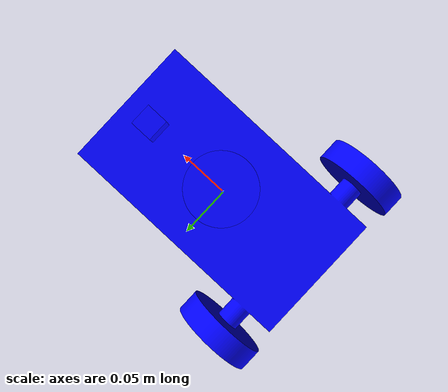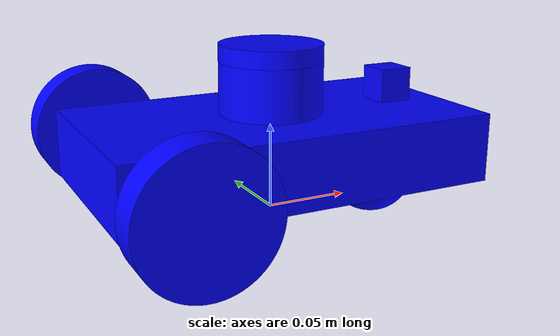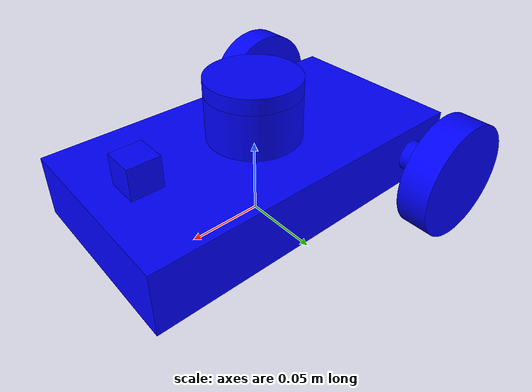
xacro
<?xml version="1.0" ?>
<robot name="G_13_WS2" xmlns:xacro="http://www.ros.org/wiki/xacro">

<xacro:include filename="$(find G_13_WS2_description)/urdf/materials.xacro" />
<xacro:include filename="$(find G_13_WS2_description)/urdf/G_13_WS2.ros2control" />
<xacro:include filename="$(find G_13_WS2_description)/urdf/G_13_WS2.gazebo" />
<link name="base_link">
  <inertial>
    <origin xyz="-0.0008716134146248871 1.5770818140795136e-17 0.04007398336506419" rpy="0 0 0"/>
    <mass value="9.054106572251074"/>
    <inertia ixx="0.012497" iyy="0.036125" izz="0.044795" ixy="0.0" iyz="0.0" ixz="-2e-05"/>
  </inertial>
  <visual>
    <origin xyz="0 0 0" rpy="0 0 0"/>
    <geometry>
      <mesh filename="file://$(find G_13_WS2_description)/meshes/base_link.stl" scale="0.001 0.001 0.001"/>
    </geometry>
    <material name="silver"/>
  </visual>
  <collision>
    <origin xyz="0 0 0" rpy="0 0 0"/>
    <geometry>
      <mesh filename="file://$(find G_13_WS2_description)/meshes/base_link.stl" scale="0.001 0.001 0.001"/>
    </geometry>
  </collision>
</link>

<link name="lidar_1">
  <inertial>
    <origin xyz="5.026061718855929e-18 0.0 0.0050000000000000044" rpy="0 0 0"/>
    <mass value="0.2219535209761188"/>
    <inertia ixx="5.2e-05" iyy="5.2e-05" izz="0.0001" ixy="0.0" iyz="-0.0" ixz="-0.0"/>
  </inertial>
  <visual>
    <origin xyz="-0.0 -0.0 -0.0875" rpy="0 0 0"/>
    <geometry>
      <mesh filename="file://$(find G_13_WS2_description)/meshes/lidar_1.stl" scale="0.001 0.001 0.001"/>
    </geometry>
    <material name="silver"/>
  </visual>
  <collision>
    <origin xyz="-0.0 -0.0 -0.0875" rpy="0 0 0"/>
    <geometry>
      <mesh filename="file://$(find G_13_WS2_description)/meshes/lidar_1.stl" scale="0.001 0.001 0.001"/>
    </geometry>
  </collision>
</link>

<link name="camara_1">
  <inertial>
    <origin xyz="-0.03 0.0 0.010000000000000002" rpy="0 0 0"/>
    <mass value="0.0628"/>
    <inertia ixx="4e-06" iyy="4e-06" izz="4e-06" ixy="0.0" iyz="0.0" ixz="0.0"/>
  </inertial>
  <visual>
    <origin xyz="-0.11 -0.0 -0.0575" rpy="0 0 0"/>
    <geometry>
      <mesh filename="file://$(find G_13_WS2_description)/meshes/camara_1.stl" scale="0.001 0.001 0.001"/>
    </geometry>
    <material name="silver"/>
  </visual>
  <collision>
    <origin xyz="-0.11 -0.0 -0.0575" rpy="0 0 0"/>
    <geometry>
      <mesh filename="file://$(find G_13_WS2_description)/meshes/camara_1.stl" scale="0.001 0.001 0.001"/>
    </geometry>
  </collision>
</link>

<link name="caster_1">
  <inertial>
    <origin xyz="-0.03999999999999998 -1.3711084015197835e-17 -0.006391402495744708" rpy="0 0 0"/>
    <mass value="0.1627226693245904"/>
    <inertia ixx="2.2e-05" iyy="2.2e-05" izz="3.8e-05" ixy="-0.0" iyz="0.0" ixz="0.0"/>
  </inertial>
  <visual>
    <origin xyz="-0.11 -0.0 -0.030" rpy="0 0 0"/>
    <geometry>
      <mesh filename="file://$(find G_13_WS2_description)/meshes/caster_1.stl" scale="0.001 0.001 0.001"/>
    </geometry>
    <material name="silver"/>
  </visual>
  <collision>
    <origin xyz="-0.11 -0.0 -0.0175" rpy="0 0 0"/>
    <geometry>
      <sphere radius="0.01"/>

    </geometry>
  </collision>
</link>

<link name="right_wheel_1">
  <inertial>
    <origin xyz="-5.551115123125783e-17 -0.010000000000000023 -1.3877787807814457e-17" rpy="0 0 0"/>
    <mass value="0.6936047530503713"/>
    <inertia ixx="0.000267" iyy="0.000488" izz="0.000267" ixy="-0.0" iyz="0.0" ixz="0.0"/>
  </inertial>
  <visual>
    <origin xyz="0.08 0.08 -0.0375" rpy="0 0 0"/>
    <geometry>
      <mesh filename="file://$(find G_13_WS2_description)/meshes/right_wheel_1.stl" scale="0.001 0.001 0.001"/>
    </geometry>
    <material name="silver"/>
  </visual>
  <collision>
    <origin xyz="0.08 0.08 -0.0375" rpy="0 0 0"/>
    <geometry>
      <mesh filename="file://$(find G_13_WS2_description)/meshes/right_wheel_1.stl" scale="0.001 0.001 0.001"/>
    </geometry>
  </collision>
</link>

<link name="left__heel_1">
  <inertial>
    <origin xyz="1.3877787807814457e-17 0.009999999999999995 6.938893903907228e-18" rpy="0 0 0"/>
    <mass value="0.6936047530503713"/>
    <inertia ixx="0.000267" iyy="0.000488" izz="0.000267" ixy="0.0" iyz="-0.0" ixz="0.0"/>
  </inertial>
  <visual>
    <origin xyz="0.08 -0.08 -0.0375" rpy="0 0 0"/>
    <geometry>
      <mesh filename="file://$(find G_13_WS2_description)/meshes/left__heel_1.stl" scale="0.001 0.001 0.001"/>
    </geometry>
    <material name="silver"/>
  </visual>
  <collision>
    <origin xyz="0.08 -0.08 -0.0375" rpy="0 0 0"/>
    <geometry>
      <mesh filename="file://$(find G_13_WS2_description)/meshes/left__heel_1.stl" scale="0.001 0.001 0.001"/>
    </geometry>
  </collision>
</link>

<joint name="lidarjoint" type="fixed">
  <origin xyz="0.0 0.0 0.0875" rpy="0 0 0"/>
  <parent link="base_link"/>
  <child link="lidar_1"/>
</joint>

<joint name="camarajoint" type="fixed">
  <origin xyz="0.11 0.0 0.0575" rpy="0 0 0"/>
  <parent link="base_link"/>
  <child link="camara_1"/>
</joint>

<joint name="casterjoint" type="fixed">
  <origin xyz="0.11 0.0 0.0175" rpy="0 0 0"/>
  <parent link="base_link"/>
  <child link="caster_1"/>
</joint>

<joint name="rightjoint" type="continuous">
  <origin xyz="-0.08 -0.08 0.0375" rpy="0 0 0"/>
  <parent link="base_link"/>
  <child link="right_wheel_1"/>
  <axis xyz="0.0 1.0 0.0"/>
</joint>

<joint name="leftjoint" type="continuous">
  <origin xyz="-0.08 0.08 0.0375" rpy="0 0 0"/>
  <parent link="base_link"/>
  <child link="left__heel_1"/>
  <axis xyz="0.0 1.0 0.0"/>
</joint>

</robot>

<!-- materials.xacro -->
<robot name="G_13_WS2" xmlns:xacro="http://www.ros.org/wiki/xacro" >

<material name="silver">
  <color rgba="0.0 0.0 1.0 1.0"/>
</material>

</robot>

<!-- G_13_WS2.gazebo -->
<robot name="G_13_WS2" xmlns:xacro="http://www.ros.org/wiki/xacro" >

<xacro:property name="body_color" value="Gazebo/Silver" />

<gazebo reference="base_link">
  <material>${body_color}</material>
  <mu1>0.2</mu1>
  <mu2>0.2</mu2>
  <self_collide>true</self_collide>
  <gravity>true</gravity>
</gazebo>

<gazebo reference="lidar_1">
  <material>${body_color}</material>
  <mu1>0.2</mu1>
  <mu2>0.2</mu2>
  <self_collide>true</self_collide>
</gazebo>

<gazebo reference="camara_1">
  <material>${body_color}</material>
  <mu1>0.2</mu1>
  <mu2>0.2</mu2>
  <self_collide>true</self_collide>
</gazebo>

<gazebo reference="caster_1">
  <material>${body_color}</material>
  <mu1>0.0</mu1>
  <mu2>0.0</mu2>
  <self_collide>true</self_collide>
</gazebo>

<gazebo reference="right_wheel_1">
  <material>Gazebo/red</material>
  <mu1>0.2</mu1>
  <mu2>0.2</mu2>
  <self_collide>true</self_collide>
</gazebo>

<gazebo reference="left__heel_1">
  <material>Gazebo/red</material>
  <mu1>0.2</mu1>
  <mu2>0.2</mu2>
  <self_collide>true</self_collide>
</gazebo>
<gazebo>
  <plugin filename="gz-sim-diff-drive-system" name="gz::sim::systems::DiffDrive">
    <left_joint>leftjoint</left_joint>
    <right_joint>rightjoint</right_joint>

    <wheel_separation>0.18</wheel_separation>
    <wheel_radius>0.0375</wheel_radius>

    <odom_publish_frequency>30</odom_publish_frequency>
    <topic>/cmd_vel</topic>
  </plugin>
</gazebo>

</robot>
